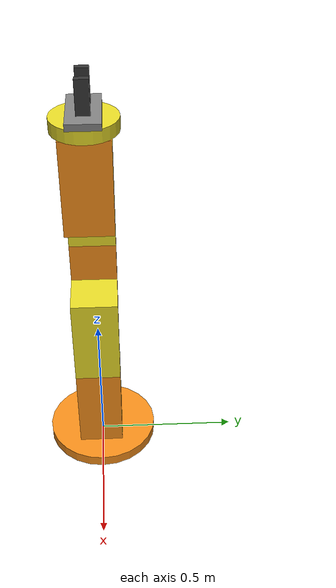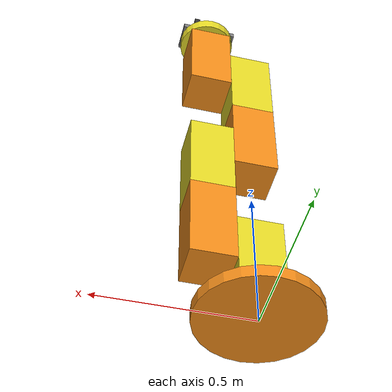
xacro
<?xml version="1.0"?>

<robot xmlns:xacro="http://www.ros.org/wiki/xacro" name="7_dof_robot">
  <xacro:arg name="prefix" default="" />

  <xacro:include filename="$(find 7_r_edu_description)/urdf/seven_r_description.urdf.xacro" />

  <xacro:include filename="$(find 7_r_edu_description)/urdf/seven_r.materials.xacro" />

  <xacro:include filename="$(find 7_r_edu_description)/urdf/seven_r.ros2_control.xacro" />

  <xacro:include filename="$(find 7_r_edu_description)/urdf/seven_r.gazebo.xacro" />

  <link name="world"/>
  <gazebo reference="world">
    <static>true</static>
  </gazebo>

  <xacro:seven_r parent="world" prefix="$(arg prefix)">
    <origin xyz="0 0 0" rpy="0 0 0" />
  </xacro:seven_r>

  <xacro:seven_r_edu_gazebo prefix="$(arg prefix)" />

  <xacro:seven_r_ros2_control
    name="seven_r" prefix="$(arg prefix)" />

</robot>

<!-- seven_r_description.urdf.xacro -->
<robot xmlns:xacro="http://www.ros.org/wiki/xacro">

  <!-- Define inertia macros -->
  <xacro:macro name="box_inertia" params="mass x y z origin_xyz origin_rpy">
    <inertial>
      <origin xyz="${origin_xyz}" rpy="${origin_rpy}"/>
      <mass value="${mass}"/>
      <inertia ixx="${mass * (y*y + z*z) / 12}" ixy="0" ixz="0"
               iyy="${mass * (x*x + z*z) / 12}" iyz="0"
               izz="${mass * (x*x + y*y) / 12}"/>
    </inertial>
  </xacro:macro>

  <xacro:macro name="cylinder_inertia" params="mass radius length origin_xyz origin_rpy">
    <inertial>
      <origin xyz="${origin_xyz}" rpy="${origin_rpy}"/>
      <mass value="${mass}"/>
      <inertia ixx="${mass * (3 * radius * radius + length * length) / 12}" ixy="0" ixz="0"
               iyy="${mass * (3 * radius * radius + length * length) / 12}" iyz="0"
               izz="${mass * (radius * radius) / 2}"/>
    </inertial>
  </xacro:macro>

  <!-- Main macro for the robot -->
  <xacro:macro name="seven_r" params="parent prefix *origin">

    <xacro:property name="mass" value="1.0" />
    <xacro:property name="length" value="0.04" />
    <xacro:property name="radius" value="0.2" />
    <xacro:property name="x" value="0.15" />
    <xacro:property name="y" value="0.15" />
    <xacro:property name="z" value="0.3" />

    <!-- Base Joint -->
    <joint name="${prefix}base_joint" type="fixed">
      <xacro:insert_block name="origin" />
      <parent link="${parent}"/>
      <child link="${prefix}base_link" />
    </joint>

    <!-- Base Link -->
    <link name="${prefix}base_link">
      <collision>
        <origin xyz="0 0 ${length/2}" rpy="0 0 0"/>
        <geometry>
          <cylinder length="${length}" radius="${radius}"/>
        </geometry>
      </collision>

      <visual>
        <origin xyz="0 0 ${length/2}" rpy="0 0 0"/>
        <geometry>
          <cylinder length="${length}" radius="${radius}"/>
        </geometry>
        <material name="orange"/>
      </visual>

      <!-- Use cylinder_inertia macro -->
      <xacro:cylinder_inertia mass="${mass}" radius="${radius}" length="${length}" origin_xyz="0 0 ${length/2}" origin_rpy="0 0 0"/>
    </link>

    <!-- Joint 1 -->
    <joint name="${prefix}joint1" type="continuous">
      <parent link="${prefix}base_link"/>
      <child link="${prefix}link1"/>
      <origin xyz="0 0 ${(z/2+length)+0.05}" rpy="0 0 0"/>
      <axis xyz="0 0 1"/>
      <dynamics damping="0.7"/>
    </joint>

    <!-- Link 1 -->
    <link name="${prefix}link1">
      <collision>
        <origin xyz="0 0 -0.05" rpy="0 0 0"/>
        <geometry>
          <box size="${x} ${y} ${z}"/>
        </geometry>
      </collision>

      <visual>
        <origin xyz="0 0 -0.05" rpy="0 0 0"/>
        <geometry>
          <box size="${x} ${y} ${z}"/>
        </geometry>
        <material name="yellow"/>
      </visual>

      <!-- Use box_inertia macro -->
      <xacro:box_inertia mass="${mass}" x="${x}" y="${y}" z="${z} " origin_xyz="0 0 -0.05" origin_rpy="0 0 0"/>
    </link>

    <!-- Joint 2 -->
    <joint name="${prefix}joint2" type="continuous">
      <parent link="${prefix}link1"/>
      <child link="${prefix}link2"/>
      <origin xyz="${x} 0 0" rpy="0 1.5708 0"/>
      <axis xyz="0 0 1"/>
      <dynamics damping="0.7"/>
    </joint>

    <!-- Link 2 -->
    <link name="${prefix}link2">
      <collision>
        <origin xyz="-0.08 0 0" rpy="0 1.5708 0"/>
        <geometry>
          <box size="${x} ${y} ${z}"/>
        </geometry>
      </collision>

      <visual>
        <origin xyz="-0.08 0 0" rpy="0 1.5708 0"/>
        <geometry>
          <box size="${x} ${y} ${z}"/>
        </geometry>
        <material name="orange"/>
      </visual>

      <!-- Use box_inertia macro -->
      <xacro:box_inertia mass="${mass}" x="${x}" y="${y}" z="${z}" origin_xyz="-0.08 0 0" origin_rpy="0 1.5708 0"/>
    </link>

    <!-- Joint 3 -->
    <joint name="${prefix}joint3" type="continuous">
      <parent link="${prefix}link2"/>
      <child link="${prefix}link3"/>
      <origin xyz="${-z-0.08-0.05} 0 0" rpy="0 -1.5708 0"/>
      <axis xyz="0 0 1"/>
      <dynamics damping="0.7"/>
    </joint>

    <!-- Link 3 -->
    <link name="${prefix}link3">
      <collision>
        <origin xyz="0 0 -0.05" rpy="0 0 0"/>
        <geometry>
          <box size="${x} ${y} ${z}"/>
        </geometry>
      </collision>

      <visual>
        <origin xyz="0 0 -0.05" rpy="0 0 0"/>
        <geometry>
          <box size="${x} ${y} ${z}"/>
        </geometry>
        <material name="yellow"/>
      </visual>

      <!-- Use box_inertia macro -->
      <xacro:box_inertia mass="${mass}" x="${x}" y="${y}" z="${z}" origin_xyz="0 0 -0.05" origin_rpy="0 0 0"/>
    </link>

    <joint name="${prefix}joint4" type="continuous">
      <parent link="${prefix}link3"/>
      <child link="${prefix}link4"/>
      <origin xyz="${-x} 0 0" rpy="0 -1.5708 0"/>
      <axis xyz="0 0 1"/>
      <dynamics damping="0.7"/>
    </joint>

    <!-- Link 4-->
    <link name="${prefix}link4">
      <collision>
        <origin xyz="0.08 0 0" rpy="0 1.5708 0"/>
        <geometry>
          <box size="${x} ${y} ${z}"/>
        </geometry>
      </collision>

      <visual>
        <origin xyz="0.08 0 0" rpy="0 1.5708 0"/>
        <geometry>
          <box size="${x} ${y} ${z}"/>
        </geometry>
        <material name="orange"/>
      </visual>

      <!-- Use box_inertia macro -->
      <xacro:box_inertia mass="${mass}" x="${x}" y="${y}" z="${z} " origin_xyz="0.08 0 0" origin_rpy="0 1.5708 0"/>
    </link>

    <joint name="${prefix}joint5" type="continuous">
      <parent link="${prefix}link4"/>
      <child link="${prefix}link5"/>
      <origin xyz="${z+0.08+0.05} 0 0" rpy="0 1.5708 0"/>
      <axis xyz="0 0 1"/>
      <dynamics damping="0.7"/>
    </joint>

    <!-- Link 5 -->
    <link name="${prefix}link5">
      <collision>
        <origin xyz="0 0 -0.05" rpy="0 0 0"/>
        <geometry>
          <box size="${x} ${y} ${z}"/>
        </geometry>
      </collision>

      <visual>
        <origin xyz="0 0 -0.05" rpy="0 0 0"/>
        <geometry>
          <box size="${x} ${y} ${z}"/>
        </geometry>
        <material name="yellow"/>
      </visual>

      <!-- Use box_inertia macro -->
      <xacro:box_inertia mass="${mass}" x="${x}" y="${y}" z="${z}" origin_xyz="0 0 -0.05" origin_rpy="0 0 0"/>
    </link>

    <joint name="${prefix}joint6" type="continuous">
      <parent link="${prefix}link5"/>
      <child link="${prefix}link6"/>
      <origin xyz="${x} 0 0" rpy="-3.14 -1.5708 0"/>
      <axis xyz="0 0 1"/>
      <dynamics damping="0.7"/>
    </joint>

    <!-- Link 6-->
    <link name="${prefix}link6">
      <collision>
        <origin xyz="0.08 0 0" rpy="0 1.5708 0"/>
        <geometry>
          <box size="${x} ${y} ${z}"/>
        </geometry>
      </collision>

      <visual>
        <origin xyz="0.08 0 0" rpy="0 1.5708 0"/>
        <geometry>
          <box size="${x} ${y} ${z}"/>
        </geometry>
        <material name="orange"/>
      </visual>

      <!-- Use box_inertia macro -->
      <xacro:box_inertia mass="${mass}" x="${x}" y="${y}" z="${z}" origin_xyz="0.08 0 0.0" origin_rpy="0 1.5708 0"/>
    </link>

    <joint name="${prefix}joint7" type="continuous">
      <parent link="${prefix}link6"/>
      <child link="${prefix}link7"/>
      <origin xyz="${x+0.08} 0 0" rpy=" 0 1.5708 0"/>
      <axis xyz="0 0 1"/>
      <dynamics damping="0.7"/>
    </joint>

    <link name="${prefix}link7">
      <collision>
        <origin xyz="0 0 ${length/2}" rpy="0 0 0"/>
        <geometry>
          <cylinder length="${length}" radius="${radius/2}"/>
        </geometry>
      </collision>

      <visual>
        <origin xyz="0 0 ${length/2}" rpy="0 0 0"/>
        <geometry>
          <cylinder length="${length}" radius="${radius/2}"/>
        </geometry>
        <material name="yellow"/>
      </visual>

      <!-- Use cylinder_inertia macro -->
      <xacro:cylinder_inertia mass="${mass}" radius="${radius/2}" length="${length} " origin_xyz="0 0 ${length/2}" origin_rpy="0 0 0"/>
    </link>

    <joint name="${prefix}tool_joint" type="fixed">
      <origin xyz="0 0 ${length+0.02/2}" rpy="0 0 0"/>
      <parent link="${prefix}link7"/>
      <child link="${prefix}gripper_base" />
    </joint>

    <!-- Gripper Base -->
    <link name="gripper_base">
        <collision>
            <geometry>
                <box size="0.2 0.1 0.02"/>
            </geometry>

        </collision>
        <visual>
            <geometry>
                <box size="0.2 0.1 0.02"/>
            </geometry>
            <material name="gray">
                <color rgba="0.5 0.5 0.5 1.0"/>
            </material>
        </visual>
      <xacro:box_inertia mass="${mass}" x="0.2" y="0.1" z="0.02" origin_xyz="0 0 0" origin_rpy="0 0 0"/>

    </link>

    <link name="finger_right">
    <collision>
            <origin xyz="-0.02 0 0" rpy="0 0 0"/>
            <geometry>
                <box size="0.02 0.04 0.1"/>
            </geometry>

        </collision>
    <visual>
      <geometry>
        <box size="0.02 0.04 0.1"/>
      </geometry>
      <origin xyz="-0.02 0 0" rpy="0 0 0"/>
      <material name="grey">
        <color rgba="0.2 0.2 0.2 1"/>
      </material>
    </visual>
    <xacro:box_inertia mass="${mass}" x="0.02" y="0.04" z="0.1" origin_xyz="-0.02 0 0" origin_rpy="0 0 0"/>
  </link>
  <link name="finger_left">
    <collision>
      <geometry>
          <box size="0.02 0.04 0.1"/>
      </geometry>
      <origin xyz="0.02 0 0" rpy="0 0 0"/>

    </collision>
    <visual>
      <geometry>
        <box size="0.02 0.04 0.1"/>
      </geometry>
      <origin xyz="0.02 0 0" rpy="0 0 0"/>
      <material name="grey">
        <color rgba="0.2 0.2 0.2 1"/>
      </material>
    </visual>
    <xacro:box_inertia mass="${mass}" x="0.02" y="0.04" z="0.1" origin_xyz="0.02 0 0" origin_rpy="0 0 0"/>

  </link>

  <joint name="right_finger_joint" type="prismatic">
    <axis xyz="-1 0 0"/>
    <origin xyz="-0.02 0.0 0.06" rpy="0.0 0.0 0.0"/>
    <parent link="gripper_base"/>
    <child link="finger_right"/>
    <limit effort="1000.0" lower="-0.025" upper="0.05" velocity="10"/>
  </joint>
  <joint name="left_finger_joint" type="prismatic">
    <mimic joint="right_finger_joint"/>
    <axis xyz="1 0 0"/>
    <origin xyz="0.02 0.0 0.06" rpy="0.0 0.0 0"/>
    <parent link="gripper_base"/>
    <child link="finger_left"/>
    <limit effort="1000.0" lower="-0.025" upper="0.05" velocity="10"/>
  </joint>

    <joint name="${prefix}end_joint" type="fixed">
      <origin xyz="0 0 0.12" rpy="0 0 0"/>
      <parent link="gripper_base"/>
      <child link="${prefix}end_link" />
    </joint>

    <link name="${prefix}end_link">
    </link>
  </xacro:macro>
</robot>
